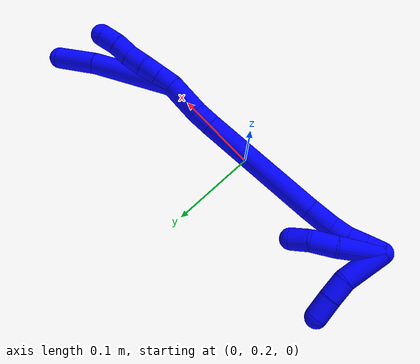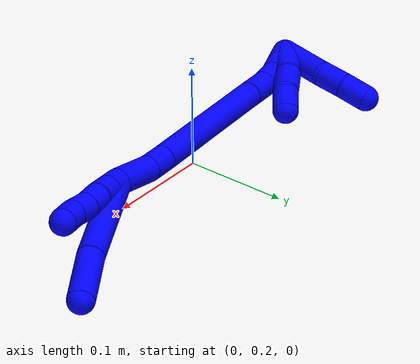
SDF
<sdf version="1.7">
 <world name="default">
  <model name="1">
   <static>0</static>
   <link name="1">
    <collision name="collision-cylinder-e_1_2_8">
     <pose>0.001028 -0.001355 -0.049775 3.11437 0.020641 1.2976</pose>
     <geometry><cylinder><radius>0.0125</radius><length>0.099608</length></cylinder></geometry>
     <surface>
      <friction><ode><mu>1.16</mu><mu2>1.16</mu2><slip1>0</slip1><slip2>0</slip2></ode></friction>
      <contact><ode><kp>1e+06</kp><kd>1</kd><max_vel>0</max_vel><min_depth>0.001</min_depth></ode></contact>
     </surface>
    </collision>
    <visual name="visual-cylinder-e_1_2_8">
     <pose>0.001028 -0.001355 -0.049775 3.11437 0.020641 1.2976</pose>
     <geometry><cylinder><radius>0.0125</radius><length>0.099608</length></cylinder></geometry>
     <material><ambient>0 0 1 1</ambient></material>
    </visual>
    <collision name="collision-cylinder-e_2_8_6">
     <pose>4.5e-05 -0.001469 -0.124635 -3.09215 -0.079874 2.0333</pose>
     <geometry><cylinder><radius>0.0125</radius><length>0.050392</length></cylinder></geometry>
     <surface>
      <friction><ode><mu>1.16</mu><mu2>1.16</mu2><slip1>0</slip1><slip2>0</slip2></ode></friction>
      <contact><ode><kp>1e+06</kp><kd>1</kd><max_vel>0</max_vel><min_depth>0.001</min_depth></ode></contact>
     </surface>
    </collision>
    <visual name="visual-cylinder-e_2_8_6">
     <pose>4.5e-05 -0.001469 -0.124635 -3.09215 -0.079874 2.0333</pose>
     <geometry><cylinder><radius>0.0125</radius><length>0.050392</length></cylinder></geometry>
     <material><ambient>0 0 1 1</ambient></material>
    </visual>
    <collision name="collision-cylinder-e_1_2_9">
     <pose>0.003402 -0.002503 -0.009064 2.87213 0.347146 1.82536</pose>
     <geometry><cylinder><radius>0.0125</radius><length>0.02</length></cylinder></geometry>
     <surface>
      <friction><ode><mu>1.16</mu><mu2>1.16</mu2><slip1>0</slip1><slip2>0</slip2></ode></friction>
      <contact><ode><kp>1e+06</kp><kd>1</kd><max_vel>0</max_vel><min_depth>0.001</min_depth></ode></contact>
     </surface>
    </collision>
    <visual name="visual-cylinder-e_1_2_9">
     <pose>0.003402 -0.002503 -0.009064 2.87213 0.347146 1.82536</pose>
     <geometry><cylinder><radius>0.0125</radius><length>0.02</length></cylinder></geometry>
     <material><ambient>0 0 1 1</ambient></material>
    </visual>
    <collision name="collision-cylinder-e_2_9_10">
     <pose>0.01017 -0.007563 -0.027191 2.86663 0.343254 1.79432</pose>
     <geometry><cylinder><radius>0.0125</radius><length>0.02</length></cylinder></geometry>
     <surface>
      <friction><ode><mu>1.16</mu><mu2>1.16</mu2><slip1>0</slip1><slip2>0</slip2></ode></friction>
      <contact><ode><kp>1e+06</kp><kd>1</kd><max_vel>0</max_vel><min_depth>0.001</min_depth></ode></contact>
     </surface>
    </collision>
    <visual name="visual-cylinder-e_2_9_10">
     <pose>0.01017 -0.007563 -0.027191 2.86663 0.343254 1.79432</pose>
     <geometry><cylinder><radius>0.0125</radius><length>0.02</length></cylinder></geometry>
     <material><ambient>0 0 1 1</ambient></material>
    </visual>
    <collision name="collision-cylinder-e_3_10_11">
     <pose>0.01549 -0.012984 -0.045634 2.84525 0.196704 1.1682</pose>
     <geometry><cylinder><radius>0.0125</radius><length>0.02</length></cylinder></geometry>
     <surface>
      <friction><ode><mu>1.16</mu><mu2>1.16</mu2><slip1>0</slip1><slip2>0</slip2></ode></friction>
      <contact><ode><kp>1e+06</kp><kd>1</kd><max_vel>0</max_vel><min_depth>0.001</min_depth></ode></contact>
     </surface>
    </collision>
    <visual name="visual-cylinder-e_3_10_11">
     <pose>0.01549 -0.012984 -0.045634 2.84525 0.196704 1.1682</pose>
     <geometry><cylinder><radius>0.0125</radius><length>0.02</length></cylinder></geometry>
     <material><ambient>0 0 1 1</ambient></material>
    </visual>
    <collision name="collision-cylinder-e_4_11_12">
     <pose>0.020265 -0.019809 -0.063752 2.71603 0.28599 1.17564</pose>
     <geometry><cylinder><radius>0.0125</radius><length>0.02</length></cylinder></geometry>
     <surface>
      <friction><ode><mu>1.16</mu><mu2>1.16</mu2><slip1>0</slip1><slip2>0</slip2></ode></friction>
      <contact><ode><kp>1e+06</kp><kd>1</kd><max_vel>0</max_vel><min_depth>0.001</min_depth></ode></contact>
     </surface>
    </collision>
    <visual name="visual-cylinder-e_4_11_12">
     <pose>0.020265 -0.019809 -0.063752 2.71603 0.28599 1.17564</pose>
     <geometry><cylinder><radius>0.0125</radius><length>0.02</length></cylinder></geometry>
     <material><ambient>0 0 1 1</ambient></material>
    </visual>
    <collision name="collision-cylinder-e_5_12_5">
     <pose>0.026112 -0.025903 -0.081779 2.91583 0.307366 1.87806</pose>
     <geometry><cylinder><radius>0.0125</radius><length>0.02</length></cylinder></geometry>
     <surface>
      <friction><ode><mu>1.16</mu><mu2>1.16</mu2><slip1>0</slip1><slip2>0</slip2></ode></friction>
      <contact><ode><kp>1e+06</kp><kd>1</kd><max_vel>0</max_vel><min_depth>0.001</min_depth></ode></contact>
     </surface>
    </collision>
    <visual name="visual-cylinder-e_5_12_5">
     <pose>0.026112 -0.025903 -0.081779 2.91583 0.307366 1.87806</pose>
     <geometry><cylinder><radius>0.0125</radius><length>0.02</length></cylinder></geometry>
     <material><ambient>0 0 1 1</ambient></material>
    </visual>
    <collision name="collision-cylinder-e_1_2_13">
     <pose>-0.005703 0.010234 0.017705 -0.52411 -0.271969 0.073369</pose>
     <geometry><cylinder><radius>0.0125</radius><length>0.042461</length></cylinder></geometry>
     <surface>
      <friction><ode><mu>1.16</mu><mu2>1.16</mu2><slip1>0</slip1><slip2>0</slip2></ode></friction>
      <contact><ode><kp>1e+06</kp><kd>1</kd><max_vel>0</max_vel><min_depth>0.001</min_depth></ode></contact>
     </surface>
    </collision>
    <visual name="visual-cylinder-e_1_2_13">
     <pose>-0.005703 0.010234 0.017705 -0.52411 -0.271969 0.073369</pose>
     <geometry><cylinder><radius>0.0125</radius><length>0.042461</length></cylinder></geometry>
     <material><ambient>0 0 1 1</ambient></material>
    </visual>
    <collision name="collision-cylinder-e_2_13_14">
     <pose>-0.01308 0.025375 0.045831 -0.440034 -0.144268 0.032317</pose>
     <geometry><cylinder><radius>0.0125</radius><length>0.023278</length></cylinder></geometry>
     <surface>
      <friction><ode><mu>1.16</mu><mu2>1.16</mu2><slip1>0</slip1><slip2>0</slip2></ode></friction>
      <contact><ode><kp>1e+06</kp><kd>1</kd><max_vel>0</max_vel><min_depth>0.001</min_depth></ode></contact>
     </surface>
    </collision>
    <visual name="visual-cylinder-e_2_13_14">
     <pose>-0.01308 0.025375 0.045831 -0.440034 -0.144268 0.032317</pose>
     <geometry><cylinder><radius>0.0125</radius><length>0.023278</length></cylinder></geometry>
     <material><ambient>0 0 1 1</ambient></material>
    </visual>
    <collision name="collision-cylinder-e_3_14_15">
     <pose>-0.02563 0.058857 0.121288 -0.413996 -0.151933 0.031966</pose>
     <geometry><cylinder><radius>0.0125</radius><length>0.143729</length></cylinder></geometry>
     <surface>
      <friction><ode><mu>1.16</mu><mu2>1.16</mu2><slip1>0</slip1><slip2>0</slip2></ode></friction>
      <contact><ode><kp>1e+06</kp><kd>1</kd><max_vel>0</max_vel><min_depth>0.001</min_depth></ode></contact>
     </surface>
    </collision>
    <visual name="visual-cylinder-e_3_14_15">
     <pose>-0.02563 0.058857 0.121288 -0.413996 -0.151933 0.031966</pose>
     <geometry><cylinder><radius>0.0125</radius><length>0.143729</length></cylinder></geometry>
     <material><ambient>0 0 1 1</ambient></material>
    </visual>
    <collision name="collision-cylinder-e_4_15_16">
     <pose>-0.039924 0.092764 0.200116 -0.368845 -0.22716 0.042552</pose>
     <geometry><cylinder><radius>0.0125</radius><length>0.030353</length></cylinder></geometry>
     <surface>
      <friction><ode><mu>1.16</mu><mu2>1.16</mu2><slip1>0</slip1><slip2>0</slip2></ode></friction>
      <contact><ode><kp>1e+06</kp><kd>1</kd><max_vel>0</max_vel><min_depth>0.001</min_depth></ode></contact>
     </surface>
    </collision>
    <visual name="visual-cylinder-e_4_15_16">
     <pose>-0.039924 0.092764 0.200116 -0.368845 -0.22716 0.042552</pose>
     <geometry><cylinder><radius>0.0125</radius><length>0.030353</length></cylinder></geometry>
     <material><ambient>0 0 1 1</ambient></material>
    </visual>
    <collision name="collision-cylinder-e_5_16_17">
     <pose>-0.044107 0.101235 0.223404 -0.31929 -0.076274 0.012287</pose>
     <geometry><cylinder><radius>0.0125</radius><length>0.020062</length></cylinder></geometry>
     <surface>
      <friction><ode><mu>1.16</mu><mu2>1.16</mu2><slip1>0</slip1><slip2>0</slip2></ode></friction>
      <contact><ode><kp>1e+06</kp><kd>1</kd><max_vel>0</max_vel><min_depth>0.001</min_depth></ode></contact>
     </surface>
    </collision>
    <visual name="visual-cylinder-e_5_16_17">
     <pose>-0.044107 0.101235 0.223404 -0.31929 -0.076274 0.012287</pose>
     <geometry><cylinder><radius>0.0125</radius><length>0.020062</length></cylinder></geometry>
     <material><ambient>0 0 1 1</ambient></material>
    </visual>
    <collision name="collision-cylinder-e_6_17_18">
     <pose>-0.045968 0.105504 0.242796 -0.113635 -0.109735 0.006248</pose>
     <geometry><cylinder><radius>0.0125</radius><length>0.02004</length></cylinder></geometry>
     <surface>
      <friction><ode><mu>1.16</mu><mu2>1.16</mu2><slip1>0</slip1><slip2>0</slip2></ode></friction>
      <contact><ode><kp>1e+06</kp><kd>1</kd><max_vel>0</max_vel><min_depth>0.001</min_depth></ode></contact>
     </surface>
    </collision>
    <visual name="visual-cylinder-e_6_17_18">
     <pose>-0.045968 0.105504 0.242796 -0.113635 -0.109735 0.006248</pose>
     <geometry><cylinder><radius>0.0125</radius><length>0.02004</length></cylinder></geometry>
     <material><ambient>0 0 1 1</ambient></material>
    </visual>
    <collision name="collision-cylinder-e_7_18_1">
     <pose>-0.048131 0.107903 0.262592 -0.127551 -0.106344 0.006798</pose>
     <geometry><cylinder><radius>0.0125</radius><length>0.020076</length></cylinder></geometry>
     <surface>
      <friction><ode><mu>1.16</mu><mu2>1.16</mu2><slip1>0</slip1><slip2>0</slip2></ode></friction>
      <contact><ode><kp>1e+06</kp><kd>1</kd><max_vel>0</max_vel><min_depth>0.001</min_depth></ode></contact>
     </surface>
    </collision>
    <visual name="visual-cylinder-e_7_18_1">
     <pose>-0.048131 0.107903 0.262592 -0.127551 -0.106344 0.006798</pose>
     <geometry><cylinder><radius>0.0125</radius><length>0.020076</length></cylinder></geometry>
     <material><ambient>0 0 1 1</ambient></material>
    </visual>
    <collision name="collision-cylinder-e_1_1_19">
     <pose>-0.043335 0.113907 0.248927 -2.94333 0.239182 -1.75883</pose>
     <geometry><cylinder><radius>0.0125</radius><length>0.049481</length></cylinder></geometry>
     <surface>
      <friction><ode><mu>1.16</mu><mu2>1.16</mu2><slip1>0</slip1><slip2>0</slip2></ode></friction>
      <contact><ode><kp>1e+06</kp><kd>1</kd><max_vel>0</max_vel><min_depth>0.001</min_depth></ode></contact>
     </surface>
    </collision>
    <visual name="visual-cylinder-e_1_1_19">
     <pose>-0.043335 0.113907 0.248927 -2.94333 0.239182 -1.75883</pose>
     <geometry><cylinder><radius>0.0125</radius><length>0.049481</length></cylinder></geometry>
     <material><ambient>0 0 1 1</ambient></material>
    </visual>
    <collision name="collision-cylinder-e_2_19_20">
     <pose>-0.036807 0.119619 0.211224 -3.07253 0.047071 -1.19624</pose>
     <geometry><cylinder><radius>0.0125</radius><length>0.028374</length></cylinder></geometry>
     <surface>
      <friction><ode><mu>1.16</mu><mu2>1.16</mu2><slip1>0</slip1><slip2>0</slip2></ode></friction>
      <contact><ode><kp>1e+06</kp><kd>1</kd><max_vel>0</max_vel><min_depth>0.001</min_depth></ode></contact>
     </surface>
    </collision>
    <visual name="visual-cylinder-e_2_19_20">
     <pose>-0.036807 0.119619 0.211224 -3.07253 0.047071 -1.19624</pose>
     <geometry><cylinder><radius>0.0125</radius><length>0.028374</length></cylinder></geometry>
     <material><ambient>0 0 1 1</ambient></material>
    </visual>
    <collision name="collision-cylinder-e_3_20_4">
     <pose>-0.03897 0.12239 0.186533 -2.97333 -0.258525 1.99059</pose>
     <geometry><cylinder><radius>0.0125</radius><length>0.022145</length></cylinder></geometry>
     <surface>
      <friction><ode><mu>1.16</mu><mu2>1.16</mu2><slip1>0</slip1><slip2>0</slip2></ode></friction>
      <contact><ode><kp>1e+06</kp><kd>1</kd><max_vel>0</max_vel><min_depth>0.001</min_depth></ode></contact>
     </surface>
    </collision>
    <visual name="visual-cylinder-e_3_20_4">
     <pose>-0.03897 0.12239 0.186533 -2.97333 -0.258525 1.99059</pose>
     <geometry><cylinder><radius>0.0125</radius><length>0.022145</length></cylinder></geometry>
     <material><ambient>0 0 1 1</ambient></material>
    </visual>
    <collision name="collision-cylinder-e_1_1_21">
     <pose>-0.047489 0.129218 0.25759 -2.21007 0.068276 -0.135676</pose>
     <geometry><cylinder><radius>0.0125</radius><length>0.050072</length></cylinder></geometry>
     <surface>
      <friction><ode><mu>1.16</mu><mu2>1.16</mu2><slip1>0</slip1><slip2>0</slip2></ode></friction>
      <contact><ode><kp>1e+06</kp><kd>1</kd><max_vel>0</max_vel><min_depth>0.001</min_depth></ode></contact>
     </surface>
    </collision>
    <visual name="visual-cylinder-e_1_1_21">
     <pose>-0.047489 0.129218 0.25759 -2.21007 0.068276 -0.135676</pose>
     <geometry><cylinder><radius>0.0125</radius><length>0.050072</length></cylinder></geometry>
     <material><ambient>0 0 1 1</ambient></material>
    </visual>
    <collision name="collision-cylinder-e_2_21_22">
     <pose>-0.047354 0.160436 0.238022 -1.96642 -0.129222 0.193671</pose>
     <geometry><cylinder><radius>0.0125</radius><length>0.024419</length></cylinder></geometry>
     <surface>
      <friction><ode><mu>1.16</mu><mu2>1.16</mu2><slip1>0</slip1><slip2>0</slip2></ode></friction>
      <contact><ode><kp>1e+06</kp><kd>1</kd><max_vel>0</max_vel><min_depth>0.001</min_depth></ode></contact>
     </surface>
    </collision>
    <visual name="visual-cylinder-e_2_21_22">
     <pose>-0.047354 0.160436 0.238022 -1.96642 -0.129222 0.193671</pose>
     <geometry><cylinder><radius>0.0125</radius><length>0.024419</length></cylinder></geometry>
     <material><ambient>0 0 1 1</ambient></material>
    </visual>
    <collision name="collision-cylinder-e_3_22_3">
     <pose>-0.05162 0.183286 0.22899 -1.9286 -0.212736 0.305425</pose>
     <geometry><cylinder><radius>0.0125</radius><length>0.025508</length></cylinder></geometry>
     <surface>
      <friction><ode><mu>1.16</mu><mu2>1.16</mu2><slip1>0</slip1><slip2>0</slip2></ode></friction>
      <contact><ode><kp>1e+06</kp><kd>1</kd><max_vel>0</max_vel><min_depth>0.001</min_depth></ode></contact>
     </surface>
    </collision>
    <visual name="visual-cylinder-e_3_22_3">
     <pose>-0.05162 0.183286 0.22899 -1.9286 -0.212736 0.305425</pose>
     <geometry><cylinder><radius>0.0125</radius><length>0.025508</length></cylinder></geometry>
     <material><ambient>0 0 1 1</ambient></material>
    </visual>
    <collision name="collision-sphere-3">
     <pose>-0.054313 0.194963 0.224624 0 -0 0</pose>
     <geometry><sphere><radius>0.0125</radius></sphere></geometry>
     <surface>
      <friction><ode><mu>1.16</mu><mu2>1.16</mu2><slip1>0</slip1><slip2>0</slip2></ode></friction>
      <contact><ode><kp>1e+06</kp><kd>1</kd><max_vel>0</max_vel><min_depth>0.001</min_depth></ode></contact>
     </surface>
    </collision>
    <visual name="visual-sphere-3">
     <pose>-0.054313 0.194963 0.224624 0 -0 0</pose>
     <geometry><sphere><radius>0.0125</radius></sphere></geometry>
     <material><ambient>0 0 1 1</ambient></material>
    </visual>
    <collision name="collision-sphere-22">
     <pose>-0.048927 0.171609 0.233356 0 -0 0</pose>
     <geometry><sphere><radius>0.0125</radius></sphere></geometry>
     <surface>
      <friction><ode><mu>1.16</mu><mu2>1.16</mu2><slip1>0</slip1><slip2>0</slip2></ode></friction>
      <contact><ode><kp>1e+06</kp><kd>1</kd><max_vel>0</max_vel><min_depth>0.001</min_depth></ode></contact>
     </surface>
    </collision>
    <visual name="visual-sphere-22">
     <pose>-0.048927 0.171609 0.233356 0 -0 0</pose>
     <geometry><sphere><radius>0.0125</radius></sphere></geometry>
     <material><ambient>0 0 1 1</ambient></material>
    </visual>
    <collision name="collision-sphere-21">
     <pose>-0.04578 0.149263 0.242688 0 -0 0</pose>
     <geometry><sphere><radius>0.0125</radius></sphere></geometry>
     <surface>
      <friction><ode><mu>1.16</mu><mu2>1.16</mu2><slip1>0</slip1><slip2>0</slip2></ode></friction>
      <contact><ode><kp>1e+06</kp><kd>1</kd><max_vel>0</max_vel><min_depth>0.001</min_depth></ode></contact>
     </surface>
    </collision>
    <visual name="visual-sphere-21">
     <pose>-0.04578 0.149263 0.242688 0 -0 0</pose>
     <geometry><sphere><radius>0.0125</radius></sphere></geometry>
     <material><ambient>0 0 1 1</ambient></material>
    </visual>
    <collision name="collision-sphere-4">
     <pose>-0.041801 0.124182 0.17598 0 -0 0</pose>
     <geometry><sphere><radius>0.0125</radius></sphere></geometry>
     <surface>
      <friction><ode><mu>1.16</mu><mu2>1.16</mu2><slip1>0</slip1><slip2>0</slip2></ode></friction>
      <contact><ode><kp>1e+06</kp><kd>1</kd><max_vel>0</max_vel><min_depth>0.001</min_depth></ode></contact>
     </surface>
    </collision>
    <visual name="visual-sphere-4">
     <pose>-0.041801 0.124182 0.17598 0 -0 0</pose>
     <geometry><sphere><radius>0.0125</radius></sphere></geometry>
     <material><ambient>0 0 1 1</ambient></material>
    </visual>
    <collision name="collision-sphere-20">
     <pose>-0.036139 0.120597 0.197087 0 -0 0</pose>
     <geometry><sphere><radius>0.0125</radius></sphere></geometry>
     <surface>
      <friction><ode><mu>1.16</mu><mu2>1.16</mu2><slip1>0</slip1><slip2>0</slip2></ode></friction>
      <contact><ode><kp>1e+06</kp><kd>1</kd><max_vel>0</max_vel><min_depth>0.001</min_depth></ode></contact>
     </surface>
    </collision>
    <visual name="visual-sphere-20">
     <pose>-0.036139 0.120597 0.197087 0 -0 0</pose>
     <geometry><sphere><radius>0.0125</radius></sphere></geometry>
     <material><ambient>0 0 1 1</ambient></material>
    </visual>
    <collision name="collision-sphere-11">
     <pose>0.017444 -0.015848 -0.055013 0 -0 0</pose>
     <geometry><sphere><radius>0.0125</radius></sphere></geometry>
     <surface>
      <friction><ode><mu>1.16</mu><mu2>1.16</mu2><slip1>0</slip1><slip2>0</slip2></ode></friction>
      <contact><ode><kp>1e+06</kp><kd>1</kd><max_vel>0</max_vel><min_depth>0.001</min_depth></ode></contact>
     </surface>
    </collision>
    <visual name="visual-sphere-11">
     <pose>0.017444 -0.015848 -0.055013 0 -0 0</pose>
     <geometry><sphere><radius>0.0125</radius></sphere></geometry>
     <material><ambient>0 0 1 1</ambient></material>
    </visual>
    <collision name="collision-sphere-10">
     <pose>0.013535 -0.01012 -0.036254 0 -0 0</pose>
     <geometry><sphere><radius>0.0125</radius></sphere></geometry>
     <surface>
      <friction><ode><mu>1.16</mu><mu2>1.16</mu2><slip1>0</slip1><slip2>0</slip2></ode></friction>
      <contact><ode><kp>1e+06</kp><kd>1</kd><max_vel>0</max_vel><min_depth>0.001</min_depth></ode></contact>
     </surface>
    </collision>
    <visual name="visual-sphere-10">
     <pose>0.013535 -0.01012 -0.036254 0 -0 0</pose>
     <geometry><sphere><radius>0.0125</radius></sphere></geometry>
     <material><ambient>0 0 1 1</ambient></material>
    </visual>
    <collision name="collision-sphere-6">
     <pose>-0.001965 -0.000228 -0.14972 0 -0 0</pose>
     <geometry><sphere><radius>0.0125</radius></sphere></geometry>
     <surface>
      <friction><ode><mu>1.16</mu><mu2>1.16</mu2><slip1>0</slip1><slip2>0</slip2></ode></friction>
      <contact><ode><kp>1e+06</kp><kd>1</kd><max_vel>0</max_vel><min_depth>0.001</min_depth></ode></contact>
     </surface>
    </collision>
    <visual name="visual-sphere-6">
     <pose>-0.001965 -0.000228 -0.14972 0 -0 0</pose>
     <geometry><sphere><radius>0.0125</radius></sphere></geometry>
     <material><ambient>0 0 1 1</ambient></material>
    </visual>
    <collision name="collision-sphere-9">
     <pose>0.006804 -0.005007 -0.018128 0 -0 0</pose>
     <geometry><sphere><radius>0.0125</radius></sphere></geometry>
     <surface>
      <friction><ode><mu>1.16</mu><mu2>1.16</mu2><slip1>0</slip1><slip2>0</slip2></ode></friction>
      <contact><ode><kp>1e+06</kp><kd>1</kd><max_vel>0</max_vel><min_depth>0.001</min_depth></ode></contact>
     </surface>
    </collision>
    <visual name="visual-sphere-9">
     <pose>0.006804 -0.005007 -0.018128 0 -0 0</pose>
     <geometry><sphere><radius>0.0125</radius></sphere></geometry>
     <material><ambient>0 0 1 1</ambient></material>
    </visual>
    <collision name="collision-sphere-2">
     <geometry><sphere><radius>0.0125</radius></sphere></geometry>
     <surface>
      <friction><ode><mu>1.16</mu><mu2>1.16</mu2><slip1>0</slip1><slip2>0</slip2></ode></friction>
      <contact><ode><kp>1e+06</kp><kd>1</kd><max_vel>0</max_vel><min_depth>0.001</min_depth></ode></contact>
     </surface>
    </collision>
    <visual name="visual-sphere-2">
     <geometry><sphere><radius>0.0125</radius></sphere></geometry>
     <material><ambient>0 0 1 1</ambient></material>
    </visual>
    <collision name="collision-sphere-19">
     <pose>-0.037474 0.118641 0.225362 0 -0 0</pose>
     <geometry><sphere><radius>0.0125</radius></sphere></geometry>
     <surface>
      <friction><ode><mu>1.16</mu><mu2>1.16</mu2><slip1>0</slip1><slip2>0</slip2></ode></friction>
      <contact><ode><kp>1e+06</kp><kd>1</kd><max_vel>0</max_vel><min_depth>0.001</min_depth></ode></contact>
     </surface>
    </collision>
    <visual name="visual-sphere-19">
     <pose>-0.037474 0.118641 0.225362 0 -0 0</pose>
     <geometry><sphere><radius>0.0125</radius></sphere></geometry>
     <material><ambient>0 0 1 1</ambient></material>
    </visual>
    <collision name="collision-sphere-8">
     <pose>0.002056 -0.00271 -0.09955 0 -0 0</pose>
     <geometry><sphere><radius>0.0125</radius></sphere></geometry>
     <surface>
      <friction><ode><mu>1.16</mu><mu2>1.16</mu2><slip1>0</slip1><slip2>0</slip2></ode></friction>
      <contact><ode><kp>1e+06</kp><kd>1</kd><max_vel>0</max_vel><min_depth>0.001</min_depth></ode></contact>
     </surface>
    </collision>
    <visual name="visual-sphere-8">
     <pose>0.002056 -0.00271 -0.09955 0 -0 0</pose>
     <geometry><sphere><radius>0.0125</radius></sphere></geometry>
     <material><ambient>0 0 1 1</ambient></material>
    </visual>
    <collision name="collision-sphere-12">
     <pose>0.023086 -0.023769 -0.07249 0 -0 0</pose>
     <geometry><sphere><radius>0.0125</radius></sphere></geometry>
     <surface>
      <friction><ode><mu>1.16</mu><mu2>1.16</mu2><slip1>0</slip1><slip2>0</slip2></ode></friction>
      <contact><ode><kp>1e+06</kp><kd>1</kd><max_vel>0</max_vel><min_depth>0.001</min_depth></ode></contact>
     </surface>
    </collision>
    <visual name="visual-sphere-12">
     <pose>0.023086 -0.023769 -0.07249 0 -0 0</pose>
     <geometry><sphere><radius>0.0125</radius></sphere></geometry>
     <material><ambient>0 0 1 1</ambient></material>
    </visual>
    <collision name="collision-sphere-5">
     <pose>0.029137 -0.028036 -0.091069 0 -0 0</pose>
     <geometry><sphere><radius>0.0125</radius></sphere></geometry>
     <surface>
      <friction><ode><mu>1.16</mu><mu2>1.16</mu2><slip1>0</slip1><slip2>0</slip2></ode></friction>
      <contact><ode><kp>1e+06</kp><kd>1</kd><max_vel>0</max_vel><min_depth>0.001</min_depth></ode></contact>
     </surface>
    </collision>
    <visual name="visual-sphere-5">
     <pose>0.029137 -0.028036 -0.091069 0 -0 0</pose>
     <geometry><sphere><radius>0.0125</radius></sphere></geometry>
     <material><ambient>0 0 1 1</ambient></material>
    </visual>
    <collision name="collision-sphere-13">
     <pose>-0.011406 0.020468 0.035411 0 -0 0</pose>
     <geometry><sphere><radius>0.0125</radius></sphere></geometry>
     <surface>
      <friction><ode><mu>1.16</mu><mu2>1.16</mu2><slip1>0</slip1><slip2>0</slip2></ode></friction>
      <contact><ode><kp>1e+06</kp><kd>1</kd><max_vel>0</max_vel><min_depth>0.001</min_depth></ode></contact>
     </surface>
    </collision>
    <visual name="visual-sphere-13">
     <pose>-0.011406 0.020468 0.035411 0 -0 0</pose>
     <geometry><sphere><radius>0.0125</radius></sphere></geometry>
     <material><ambient>0 0 1 1</ambient></material>
    </visual>
    <collision name="collision-sphere-14">
     <pose>-0.014753 0.030281 0.056252 0 -0 0</pose>
     <geometry><sphere><radius>0.0125</radius></sphere></geometry>
     <surface>
      <friction><ode><mu>1.16</mu><mu2>1.16</mu2><slip1>0</slip1><slip2>0</slip2></ode></friction>
      <contact><ode><kp>1e+06</kp><kd>1</kd><max_vel>0</max_vel><min_depth>0.001</min_depth></ode></contact>
     </surface>
    </collision>
    <visual name="visual-sphere-14">
     <pose>-0.014753 0.030281 0.056252 0 -0 0</pose>
     <geometry><sphere><radius>0.0125</radius></sphere></geometry>
     <material><ambient>0 0 1 1</ambient></material>
    </visual>
    <collision name="collision-sphere-15">
     <pose>-0.036506 0.087433 0.186324 0 -0 0</pose>
     <geometry><sphere><radius>0.0125</radius></sphere></geometry>
     <surface>
      <friction><ode><mu>1.16</mu><mu2>1.16</mu2><slip1>0</slip1><slip2>0</slip2></ode></friction>
      <contact><ode><kp>1e+06</kp><kd>1</kd><max_vel>0</max_vel><min_depth>0.001</min_depth></ode></contact>
     </surface>
    </collision>
    <visual name="visual-sphere-15">
     <pose>-0.036506 0.087433 0.186324 0 -0 0</pose>
     <geometry><sphere><radius>0.0125</radius></sphere></geometry>
     <material><ambient>0 0 1 1</ambient></material>
    </visual>
    <collision name="collision-sphere-16">
     <pose>-0.043342 0.098096 0.213908 0 -0 0</pose>
     <geometry><sphere><radius>0.0125</radius></sphere></geometry>
     <surface>
      <friction><ode><mu>1.16</mu><mu2>1.16</mu2><slip1>0</slip1><slip2>0</slip2></ode></friction>
      <contact><ode><kp>1e+06</kp><kd>1</kd><max_vel>0</max_vel><min_depth>0.001</min_depth></ode></contact>
     </surface>
    </collision>
    <visual name="visual-sphere-16">
     <pose>-0.043342 0.098096 0.213908 0 -0 0</pose>
     <geometry><sphere><radius>0.0125</radius></sphere></geometry>
     <material><ambient>0 0 1 1</ambient></material>
    </visual>
    <collision name="collision-sphere-17">
     <pose>-0.044871 0.104375 0.232901 0 -0 0</pose>
     <geometry><sphere><radius>0.0125</radius></sphere></geometry>
     <surface>
      <friction><ode><mu>1.16</mu><mu2>1.16</mu2><slip1>0</slip1><slip2>0</slip2></ode></friction>
      <contact><ode><kp>1e+06</kp><kd>1</kd><max_vel>0</max_vel><min_depth>0.001</min_depth></ode></contact>
     </surface>
    </collision>
    <visual name="visual-sphere-17">
     <pose>-0.044871 0.104375 0.232901 0 -0 0</pose>
     <geometry><sphere><radius>0.0125</radius></sphere></geometry>
     <material><ambient>0 0 1 1</ambient></material>
    </visual>
    <collision name="collision-sphere-18">
     <pose>-0.047066 0.106633 0.252692 0 -0 0</pose>
     <geometry><sphere><radius>0.0125</radius></sphere></geometry>
     <surface>
      <friction><ode><mu>1.16</mu><mu2>1.16</mu2><slip1>0</slip1><slip2>0</slip2></ode></friction>
      <contact><ode><kp>1e+06</kp><kd>1</kd><max_vel>0</max_vel><min_depth>0.001</min_depth></ode></contact>
     </surface>
    </collision>
    <visual name="visual-sphere-18">
     <pose>-0.047066 0.106633 0.252692 0 -0 0</pose>
     <geometry><sphere><radius>0.0125</radius></sphere></geometry>
     <material><ambient>0 0 1 1</ambient></material>
    </visual>
    <collision name="collision-sphere-1">
     <pose>-0.049197 0.109173 0.272492 0 -0 0</pose>
     <geometry><sphere><radius>0.0125</radius></sphere></geometry>
     <surface>
      <friction><ode><mu>1.16</mu><mu2>1.16</mu2><slip1>0</slip1><slip2>0</slip2></ode></friction>
      <contact><ode><kp>1e+06</kp><kd>1</kd><max_vel>0</max_vel><min_depth>0.001</min_depth></ode></contact>
     </surface>
    </collision>
    <visual name="visual-sphere-1">
     <pose>-0.049197 0.109173 0.272492 0 -0 0</pose>
     <geometry><sphere><radius>0.0125</radius></sphere></geometry>
     <material><ambient>0 0 1 1</ambient></material>
    </visual>
    <inertial>
     <pose>-0.020672 0.058442 0.094868 0 -0 0</pose>
     <mass>0.75</mass>
     <inertia>
      <ixx>0.000395</ixx>
      <ixy>0</ixy>
      <ixz>0</ixz>
      <iyy>0.000336</iyy>
      <iyz>0</iyz>
      <izz>-9.3e-05</izz>
     </inertia>
    </inertial>
   </link>
   <pose>0.115023 0.208433 0.039091 -0.305338 -1.39632 0.800587</pose>
  </model>
 </world>
</sdf>
